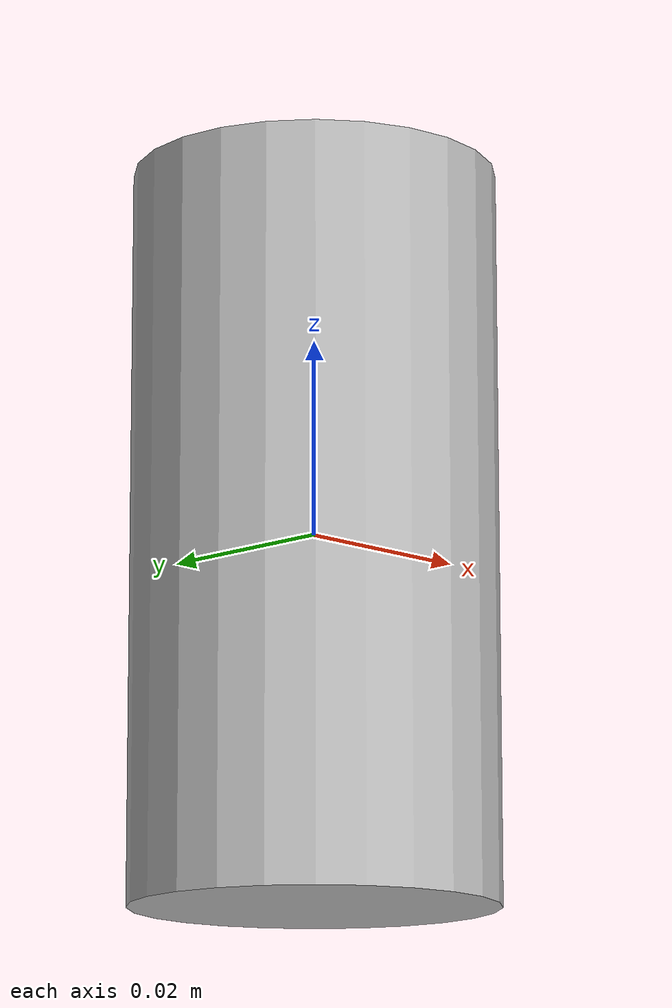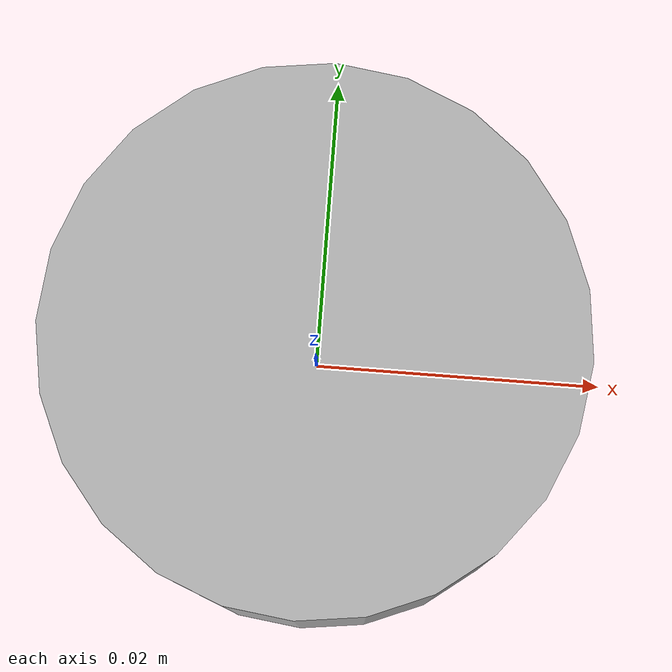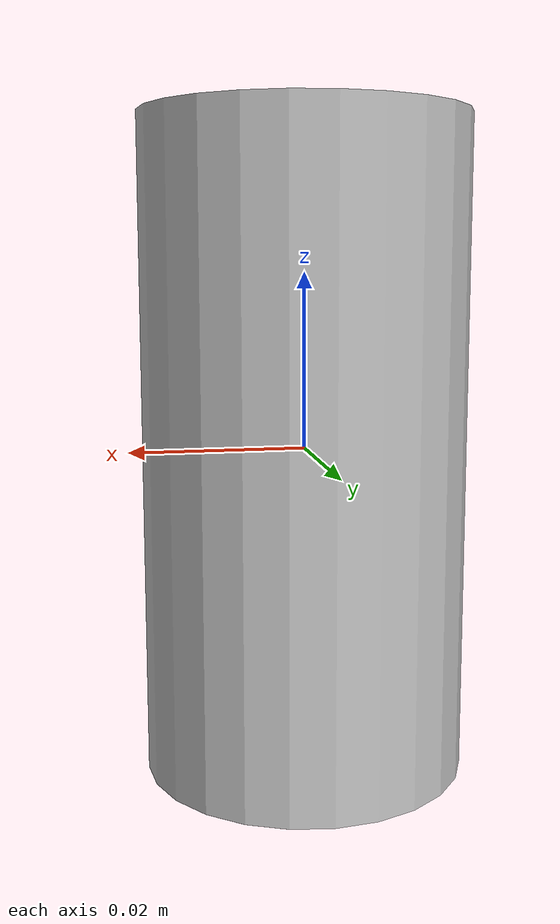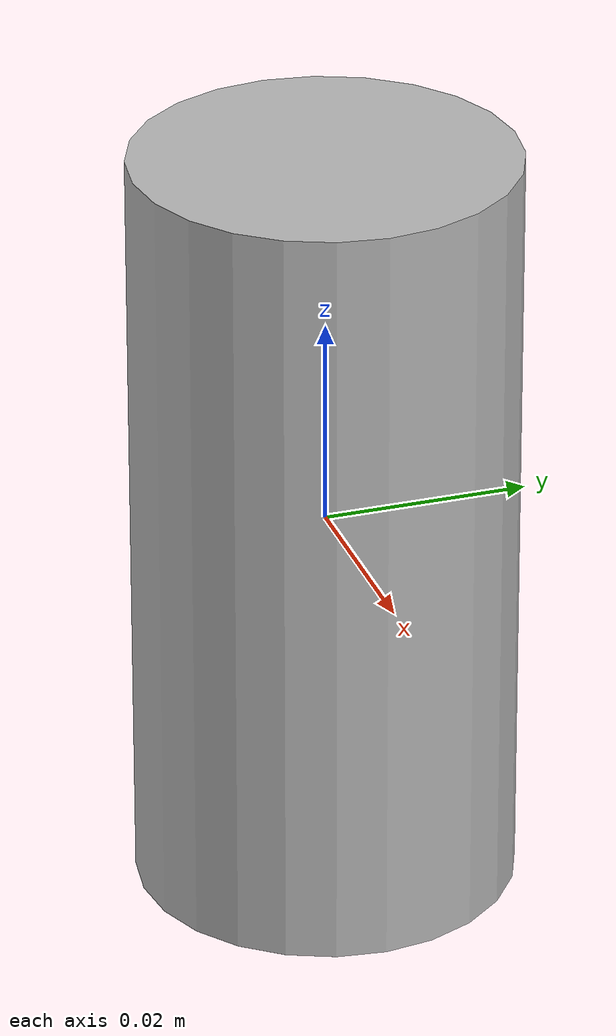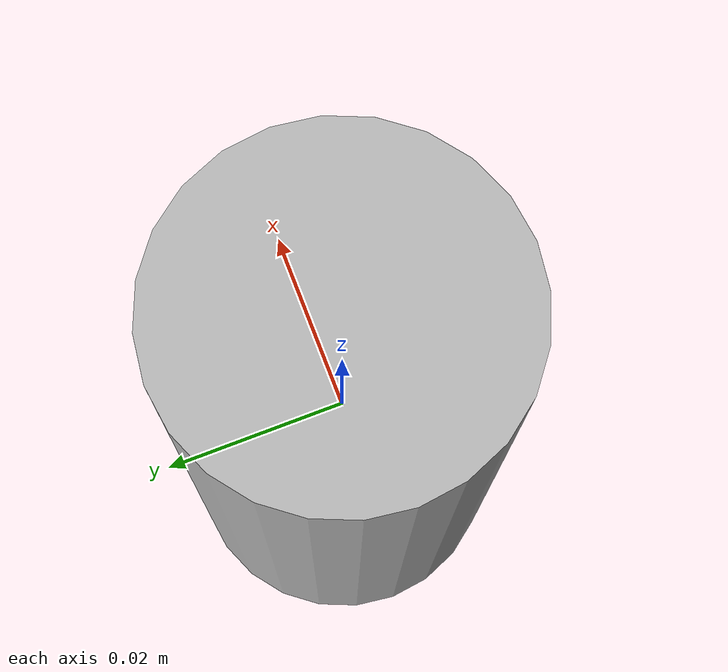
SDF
<?xml version='1.0'?>
<sdf version='1.7'>
  <model name='sprite'>
    <link name='link_0'>
      <inertial>
        <mass>0.00147636</mass>
        <inertia>
          <ixx>4.89601e-06</ixx>
          <ixy>0</ixy>
          <ixz>0</ixz>
          <iyy>4.89601e-06</iyy>
          <iyz>0</iyz>
          <izz>1.48331e-06</izz>
        </inertia>
        <pose>0 0 0 0 -0 0</pose>
      </inertial>
      <pose>-0 -0 0 0 -0 0</pose>
      <visual name='visual'>
        <pose>0 0 0 0 -0 0</pose>
        <geometry>
          <cylinder>
            <radius>0.018402</radius>
            <length>0.074444</length>
          </cylinder>
        </geometry>
        <material>
          <lighting>1</lighting>
          <script>
            <uri>model://sprite/materials/scripts</uri>
             <uri>model://sprite/materials/textures</uri>
            <name>sprite</name>
          </script>
          <shader type='pixel'/>
        </material>
        <transparency>0</transparency>
        <cast_shadows>1</cast_shadows>
      </visual>
      <collision name='collision'>
        <laser_retro>0</laser_retro>
        <max_contacts>10</max_contacts>
        <pose>0 0 0 0 -0 0</pose>
        <geometry>
          <cylinder>
            <radius>0.018402</radius>
            <length>0.074444</length>
          </cylinder>
        </geometry>
        <surface>
          <friction>
            <ode>
              <mu>1</mu>
              <mu2>1</mu2>
              <fdir1>0 0 0</fdir1>
              <slip1>0</slip1>
              <slip2>0</slip2>
            </ode>
            <torsional>
              <coefficient>1</coefficient>
              <patch_radius>0</patch_radius>
              <surface_radius>0</surface_radius>
              <use_patch_radius>1</use_patch_radius>
              <ode>
                <slip>0</slip>
              </ode>
            </torsional>
          </friction>
          <bounce>
            <restitution_coefficient>0</restitution_coefficient>
            <threshold>1e+06</threshold>
          </bounce>
          <contact>
            <collide_without_contact>0</collide_without_contact>
            <collide_without_contact_bitmask>1</collide_without_contact_bitmask>
            <collide_bitmask>1</collide_bitmask>
            <ode>
              <soft_cfm>0</soft_cfm>
              <soft_erp>0.2</soft_erp>
              <kp>1e+13</kp>
              <kd>1</kd>
              <max_vel>0.01</max_vel>
              <min_depth>0</min_depth>
            </ode>
            <bullet>
              <split_impulse>1</split_impulse>
              <split_impulse_penetration_threshold>-0.01</split_impulse_penetration_threshold>
              <soft_cfm>0</soft_cfm>
              <soft_erp>0.2</soft_erp>
              <kp>1e+13</kp>
              <kd>1</kd>
            </bullet>
          </contact>
        </surface>
      </collision>
    </link>
    <static>0</static>
    <allow_auto_disable>1</allow_auto_disable>
  </model>
</sdf>
